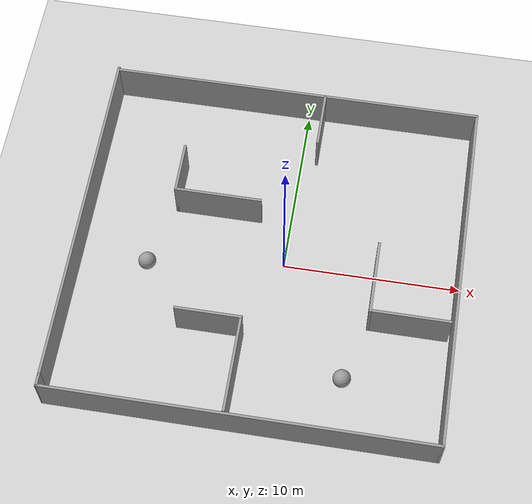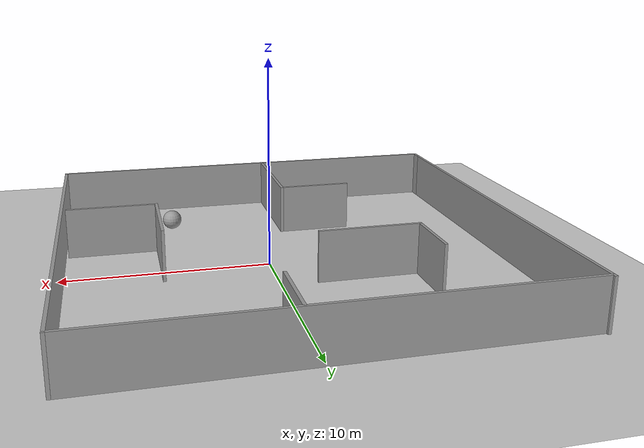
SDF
<sdf version="1.7">
 <world name="default">
  <light name="sun" type="directional">
   <pose>0 0 10 0 -0 0</pose>
   <diffuse>0.8 0.8 0.8 1</diffuse>
   <specular>0.2 0.2 0.2 1</specular>
   <attenuation>
    <range>1000</range>
    <constant>0.9</constant>
    <linear>0.01</linear>
    <quadratic>0.001</quadratic>
   </attenuation>
   <direction>-0.5 0.1 -0.9</direction>
   <spot><inner_angle>0</inner_angle><outer_angle>0</outer_angle><falloff>0</falloff></spot>
  </light>
  <model name="ground_plane">
   <static>1</static>
   <link name="link">
    <collision name="collision">
     <geometry><plane><normal>0 0 1</normal><size>100 100</size></plane></geometry>
     <surface>
      <contact><collide_bitmask>65535</collide_bitmask></contact>
      <friction><ode><mu>100</mu><mu2>50</mu2></ode></friction>
     </surface>
    </collision>
    <visual name="visual">
     <cast_shadows>0</cast_shadows>
     <geometry><plane><normal>0 0 1</normal><size>100 100</size></plane></geometry>
     <material>
      <script><uri>file://media/materials/scripts/gazebo.material</uri><name>Gazebo/Grey</name></script>
     </material>
    </visual>
   </link>
  </model>
  <gravity>0 0 -9.8</gravity>
  <magnetic_field>6e-06 2.3e-05 -4.2e-05</magnetic_field>
  <atmosphere type="adiabatic"/>
  <physics type="ode">
   <max_step_size>0.001</max_step_size>
   <real_time_factor>1</real_time_factor>
   <real_time_update_rate>1000</real_time_update_rate>
  </physics>
  <scene><ambient>0.4 0.4 0.4 1</ambient><background>0.7 0.7 0.7 1</background><shadows>1</shadows></scene>
  <spherical_coordinates>
   <surface_model>EARTH_WGS84</surface_model>
   <latitude_deg>0</latitude_deg>
   <longitude_deg>0</longitude_deg>
   <elevation>0</elevation>
   <heading_deg>0</heading_deg>
  </spherical_coordinates>
  <model name="map1">
   <pose>-0.89073 0.076704 0 0 -0 0</pose>
   <link name="Wall_10">
    <collision name="Wall_10_Collision">
     <geometry><box><size>3 0.15 2.5</size></box></geometry>
     <pose>0 0 1.25 0 -0 0</pose>
    </collision>
    <visual name="Wall_10_Visual">
     <pose>0 0 1.25 0 -0 0</pose>
     <geometry><box><size>3 0.15 2.5</size></box></geometry>
     <material>
      <script><uri>file://media/materials/scripts/gazebo.material</uri><name>Gazebo/Grey</name></script>
      <ambient>1 1 1 1</ambient>
     </material>
     <meta><layer>0</layer></meta>
    </visual>
    <pose>-5.74404 4.00904 0 0 -0 -1.5708</pose>
   </link>
   <link name="Wall_11">
    <collision name="Wall_11_Collision">
     <geometry><box><size>5 0.15 2.5</size></box></geometry>
     <pose>0 0 1.25 0 -0 0</pose>
    </collision>
    <visual name="Wall_11_Visual">
     <pose>0 0 1.25 0 -0 0</pose>
     <geometry><box><size>5 0.15 2.5</size></box></geometry>
     <material>
      <script><uri>file://media/materials/scripts/gazebo.material</uri><name>Gazebo/Grey</name></script>
      <ambient>1 1 1 1</ambient>
     </material>
     <meta><layer>0</layer></meta>
    </visual>
    <pose>-3.31904 2.58404 0 0 -0 0</pose>
   </link>
   <link name="Wall_13">
    <collision name="Wall_13_Collision">
     <geometry><box><size>5.5 0.15 2.5</size></box></geometry>
     <pose>0 0 1.25 0 -0 0</pose>
    </collision>
    <visual name="Wall_13_Visual">
     <pose>0 0 1.25 0 -0 0</pose>
     <geometry><box><size>5.5 0.15 2.5</size></box></geometry>
     <material>
      <script><uri>file://media/materials/scripts/gazebo.material</uri><name>Gazebo/Grey</name></script>
      <ambient>1 1 1 1</ambient>
     </material>
     <meta><layer>0</layer></meta>
    </visual>
    <pose>-0.757836 -7.36632 0 0 -0 -1.5708</pose>
   </link>
   <link name="Wall_16">
    <collision name="Wall_16_Collision">
     <geometry><box><size>4.5 0.15 2.5</size></box></geometry>
     <pose>0 0 1.25 0 -0 0</pose>
    </collision>
    <visual name="Wall_16_Visual">
     <pose>0 0 1.25 0 -0 0</pose>
     <geometry><box><size>4.5 0.15 2.5</size></box></geometry>
     <material>
      <script><uri>file://media/materials/scripts/gazebo.material</uri><name>Gazebo/Grey</name></script>
      <ambient>1 1 1 1</ambient>
     </material>
     <meta><layer>0</layer></meta>
    </visual>
    <pose>8.2326 -3.22299 0 0 -0 3.14159</pose>
   </link>
   <link name="Wall_17">
    <collision name="Wall_17_Collision">
     <geometry><box><size>4.25 0.15 2.5</size></box></geometry>
     <pose>0 0 1.25 0 -0 0</pose>
    </collision>
    <visual name="Wall_17_Visual">
     <pose>0 0 1.25 0 -0 0</pose>
     <geometry><box><size>4.25 0.15 2.5</size></box></geometry>
     <material>
      <script><uri>file://media/materials/scripts/gazebo.material</uri><name>Gazebo/Grey</name></script>
      <ambient>1 1 1 1</ambient>
     </material>
     <meta><layer>0</layer></meta>
    </visual>
    <pose>6.0576 -1.17299 0 0 -0 1.5708</pose>
   </link>
   <link name="Wall_20">
    <collision name="Wall_20_Collision">
     <geometry><box><size>3.75 0.15 2.5</size></box></geometry>
     <pose>0 0 1.25 0 -0 0</pose>
    </collision>
    <visual name="Wall_20_Visual">
     <pose>0 0 1.25 0 -0 0</pose>
     <geometry><box><size>3.75 0.15 2.5</size></box></geometry>
     <material>
      <script><uri>file://media/materials/scripts/gazebo.material</uri><name>Gazebo/Grey</name></script>
      <ambient>1 1 1 1</ambient>
     </material>
     <meta><layer>0</layer></meta>
    </visual>
    <pose>-2.55784 -4.69132 0 0 -0 3.14159</pose>
   </link>
   <link name="Wall_23">
    <collision name="Wall_23_Collision">
     <geometry><box><size>3.25 0.15 2.5</size></box></geometry>
     <pose>0 0 1.25 0 -0 0</pose>
    </collision>
    <visual name="Wall_23_Visual">
     <pose>0 0 1.25 0 -0 0</pose>
     <geometry><box><size>3.25 0.15 2.5</size></box></geometry>
     <material>
      <script><uri>file://media/materials/scripts/gazebo.material</uri><name>Gazebo/Grey</name></script>
      <ambient>1 1 1 1</ambient>
     </material>
     <meta><layer>0</layer></meta>
    </visual>
    <pose>1.75056 8.50317 0 0 -0 -1.5708</pose>
   </link>
   <link name="Wall_4">
    <collision name="Wall_4_Collision">
     <geometry><box><size>20 0.15 2.5</size></box></geometry>
     <pose>0 0 1.25 0 -0 0</pose>
    </collision>
    <visual name="Wall_4_Visual">
     <pose>0 0 1.25 0 -0 0</pose>
     <geometry><box><size>20 0.15 2.5</size></box></geometry>
     <material>
      <script><uri>file://media/materials/scripts/gazebo.material</uri><name>Gazebo/Grey</name></script>
      <ambient>1 1 1 1</ambient>
     </material>
     <meta><layer>0</layer></meta>
    </visual>
    <pose>-10.675 0.3 0 0 -0 -1.5708</pose>
   </link>
   <link name="Wall_5">
    <collision name="Wall_5_Collision">
     <geometry><box><size>0.75 0.15 2.5</size></box></geometry>
     <pose>0 0 1.25 0 -0 0</pose>
    </collision>
    <visual name="Wall_5_Visual">
     <pose>0 0 1.25 0 -0 0</pose>
     <geometry><box><size>0.75 0.15 2.5</size></box></geometry>
     <material>
      <script><uri>file://media/materials/scripts/gazebo.material</uri><name>Gazebo/Grey</name></script>
      <ambient>1 1 1 1</ambient>
     </material>
     <meta><layer>0</layer></meta>
    </visual>
    <pose>-10.675 -9.925 0 0 -0 -1.5708</pose>
   </link>
   <link name="Wall_6">
    <collision name="Wall_6_Collision">
     <geometry><box><size>21.5 0.15 2.5</size></box></geometry>
     <pose>0 0 1.25 0 -0 0</pose>
    </collision>
    <visual name="Wall_6_Visual">
     <pose>0 0 1.25 0 -0 0</pose>
     <geometry><box><size>21.5 0.15 2.5</size></box></geometry>
     <material>
      <script><uri>file://media/materials/scripts/gazebo.material</uri><name>Gazebo/Grey</name></script>
      <ambient>1 1 1 1</ambient>
     </material>
     <meta><layer>0</layer></meta>
    </visual>
    <pose>-0 -10.225 0 0 -0 0</pose>
   </link>
   <link name="Wall_7">
    <collision name="Wall_7_Collision">
     <geometry><box><size>20.5 0.15 2.5</size></box></geometry>
     <pose>0 0 1.25 0 -0 0</pose>
    </collision>
    <visual name="Wall_7_Visual">
     <pose>0 0 1.25 0 -0 0</pose>
     <geometry><box><size>20.5 0.15 2.5</size></box></geometry>
     <material>
      <script><uri>file://media/materials/scripts/gazebo.material</uri><name>Gazebo/Grey</name></script>
      <ambient>1 1 1 1</ambient>
     </material>
     <meta><layer>0</layer></meta>
    </visual>
    <pose>10.675 -0.05 0 0 -0 1.5708</pose>
   </link>
   <link name="Wall_8">
    <collision name="Wall_8_Collision">
     <geometry><box><size>21.5 0.15 2.5</size></box></geometry>
     <pose>0 0 1.25 0 -0 0</pose>
    </collision>
    <visual name="Wall_8_Visual">
     <pose>0 0 1.25 0 -0 0</pose>
     <geometry><box><size>21.5 0.15 2.5</size></box></geometry>
     <material>
      <script><uri>file://media/materials/scripts/gazebo.material</uri><name>Gazebo/Grey</name></script>
      <ambient>1 1 1 1</ambient>
     </material>
     <meta><layer>0</layer></meta>
    </visual>
    <pose>-0 10.125 0 0 -0 3.14159</pose>
   </link>
   <static>1</static>
  </model>
  <model name="unit_sphere">
   <pose>4.15163 -6.48109 0.5 0 -0 0</pose>
   <link name="link">
    <inertial>
     <mass>1</mass>
     <inertia><ixx>0.1</ixx><ixy>0</ixy><ixz>0</ixz><iyy>0.1</iyy><iyz>0</iyz><izz>0.1</izz></inertia>
    </inertial>
    <collision name="collision"><geometry><sphere><radius>0.5</radius></sphere></geometry></collision>
    <visual name="visual">
     <geometry><sphere><radius>0.5</radius></sphere></geometry>
     <material>
      <script><name>Gazebo/Grey</name><uri>file://media/materials/scripts/gazebo.material</uri></script>
     </material>
    </visual>
   </link>
  </model>
  <model name="unit_sphere_0">
   <pose>-7.66752 -1.09606 0.5 0 -0 0</pose>
   <link name="link">
    <inertial>
     <mass>1</mass>
     <inertia><ixx>0.1</ixx><ixy>0</ixy><ixz>0</ixz><iyy>0.1</iyy><iyz>0</iyz><izz>0.1</izz></inertia>
    </inertial>
    <collision name="collision"><geometry><sphere><radius>0.5</radius></sphere></geometry></collision>
    <visual name="visual">
     <geometry><sphere><radius>0.5</radius></sphere></geometry>
     <material>
      <script><name>Gazebo/Grey</name><uri>file://media/materials/scripts/gazebo.material</uri></script>
     </material>
    </visual>
   </link>
  </model>
 </world>
</sdf>
